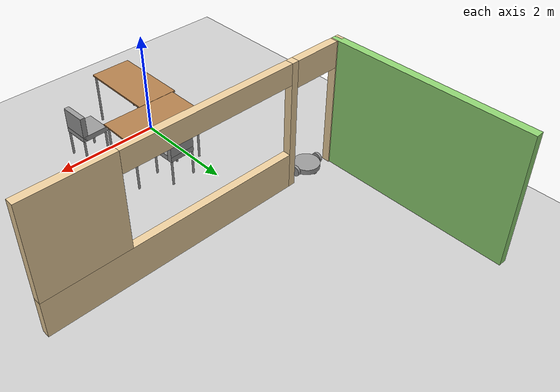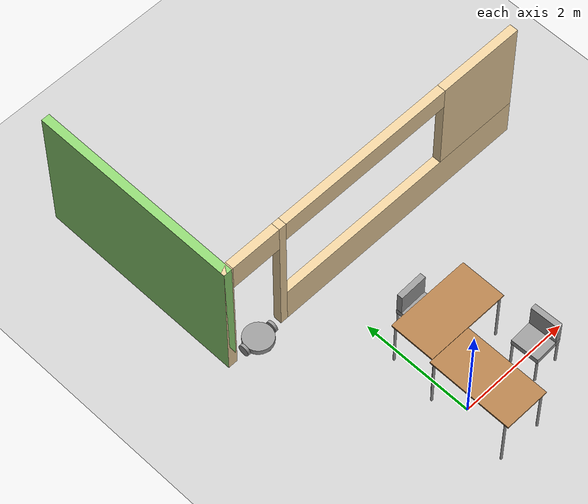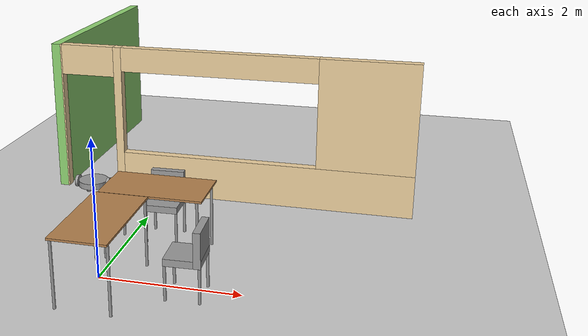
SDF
<sdf version="1.6">
 <world name="default">
  <model name="ground_plane">
   <static>1</static>
   <link name="link">
    <collision name="collision">
     <geometry><plane><normal>0 0 1</normal><size>100 100</size></plane></geometry>
     <surface>
      <contact><collide_bitmask>65535</collide_bitmask></contact>
      <friction><ode><mu>100</mu><mu2>50</mu2></ode></friction>
     </surface>
    </collision>
    <visual name="visual">
     <cast_shadows>0</cast_shadows>
     <geometry><plane><normal>0 0 1</normal><size>100 100</size></plane></geometry>
     <material>
      <script><uri>file://media/materials/scripts/gazebo.material</uri><name>Gazebo/Grey</name></script>
     </material>
    </visual>
   </link>
  </model>
  <model name="dunder_mifflin_scranton_full">
   <pose>4.5312 0.479645 0 0 -0 0</pose>
   <link name="Wall_21">
    <collision name="Wall_21_Collision">
     <geometry><box><size>3.75 0.15 2.5</size></box></geometry>
     <pose>0 0 1.25 0 -0 0</pose>
    </collision>
    <visual name="Wall_21_Visual">
     <pose>0 0 1.25 0 -0 0</pose>
     <geometry><box><size>3.75 0.15 2.5</size></box></geometry>
     <material>
      <script><uri>file://media/materials/scripts/gazebo.material</uri><name>Gazebo/Grey</name></script>
      <ambient>0.556863 0.823529 0.443137 1</ambient>
     </material>
     <meta><layer>0</layer></meta>
    </visual>
    <pose>-6.38225 4.33925 0 0 -0 1.5708</pose>
   </link>
   <link name="Wall_23">
    <pose>-3.45724 2.53925 0 0 -0 0</pose>
    <visual name="Wall_23_Visual_0">
     <pose>-2.91414 0 1.25 0 -0 0</pose>
     <geometry><box><size>0.171718 0.15 2.5</size></box></geometry>
     <material>
      <script><uri>file://media/materials/scripts/gazebo.material</uri><name>Gazebo/Grey</name></script>
      <ambient>0.921569 0.807843 0.615686 1</ambient>
     </material>
     <meta><layer>0</layer></meta>
    </visual>
    <collision name="Wall_23_Collision_0">
     <geometry><box><size>0.171718 0.15 2.5</size></box></geometry>
     <pose>-2.91414 0 1.25 0 -0 0</pose>
    </collision>
    <visual name="Wall_23_Visual_1">
     <pose>-1.86179 0 1.25 0 -0 0</pose>
     <geometry><box><size>0.132993 0.15 2.5</size></box></geometry>
     <material>
      <script><uri>file://media/materials/scripts/gazebo.material</uri><name>Gazebo/Grey</name></script>
      <ambient>0.921569 0.807843 0.615686 1</ambient>
     </material>
     <meta><layer>0</layer></meta>
    </visual>
    <collision name="Wall_23_Collision_1">
     <geometry><box><size>0.132993 0.15 2.5</size></box></geometry>
     <pose>-1.86179 0 1.25 0 -0 0</pose>
    </collision>
    <visual name="Wall_23_Visual_2">
     <pose>0.602356 0 0.35 0 -0 0</pose>
     <geometry><box><size>4.79529 0.15 0.7</size></box></geometry>
     <material>
      <script><uri>file://media/materials/scripts/gazebo.material</uri><name>Gazebo/Grey</name></script>
      <ambient>0.921569 0.807843 0.615686 1</ambient>
     </material>
     <meta><layer>0</layer></meta>
    </visual>
    <collision name="Wall_23_Collision_2">
     <geometry><box><size>4.79529 0.15 0.7</size></box></geometry>
     <pose>0.602356 0 0.35 0 -0 0</pose>
    </collision>
    <visual name="Wall_23_Visual_3">
     <pose>2.22271 0 1.6 0 -0 0</pose>
     <geometry><box><size>1.55459 0.15 1.8</size></box></geometry>
     <material>
      <script><uri>file://media/materials/scripts/gazebo.material</uri><name>Gazebo/Grey</name></script>
      <ambient>0.921569 0.807843 0.615686 1</ambient>
     </material>
     <meta><layer>0</layer></meta>
    </visual>
    <collision name="Wall_23_Collision_3">
     <geometry><box><size>1.55459 0.15 1.8</size></box></geometry>
     <pose>2.22271 0 1.6 0 -0 0</pose>
    </collision>
    <visual name="Wall_23_Visual_4">
     <pose>-2.37828 0 2.25 0 -0 0</pose>
     <geometry><box><size>0.9 0.15 0.5</size></box></geometry>
     <material>
      <script><uri>file://media/materials/scripts/gazebo.material</uri><name>Gazebo/Grey</name></script>
      <ambient>0.921569 0.807843 0.615686 1</ambient>
     </material>
     <meta><layer>0</layer></meta>
    </visual>
    <collision name="Wall_23_Collision_4">
     <geometry><box><size>0.9 0.15 0.5</size></box></geometry>
     <pose>-2.37828 0 2.25 0 -0 0</pose>
    </collision>
    <visual name="Wall_23_Visual_5">
     <pose>-0.174937 0 2.3 0 -0 0</pose>
     <geometry><box><size>3.2407 0.15 0.4</size></box></geometry>
     <material>
      <script><uri>file://media/materials/scripts/gazebo.material</uri><name>Gazebo/Grey</name></script>
      <ambient>0.921569 0.807843 0.615686 1</ambient>
     </material>
     <meta><layer>0</layer></meta>
    </visual>
    <collision name="Wall_23_Collision_5">
     <geometry><box><size>3.2407 0.15 0.4</size></box></geometry>
     <pose>-0.174937 0 2.3 0 -0 0</pose>
    </collision>
   </link>
   <static>1</static>
  </model>
  <model name="table_6">
   <static>1</static>
   <link name="link">
    <collision name="surface">
     <pose>0 0 1 0 -0 0</pose>
     <geometry><box><size>1.5 0.8 0.03</size></box></geometry>
     <surface><friction><ode><mu>0.6</mu><mu2>0.6</mu2></ode></friction></surface>
    </collision>
    <visual name="visual1">
     <pose>0 0 1 0 -0 0</pose>
     <geometry><box><size>1.5 0.8 0.03</size></box></geometry>
     <material>
      <script><uri>file://media/materials/scripts/gazebo.material</uri><name>Gazebo/Wood</name></script>
     </material>
    </visual>
    <collision name="front_left_leg">
     <pose>0.68 0.38 0.5 0 -0 0</pose>
     <geometry><cylinder><radius>0.02</radius><length>1</length></cylinder></geometry>
    </collision>
    <visual name="front_left_leg">
     <pose>0.68 0.38 0.5 0 -0 0</pose>
     <geometry><cylinder><radius>0.02</radius><length>1</length></cylinder></geometry>
     <material>
      <script><uri>file://media/materials/scripts/gazebo.material</uri><name>Gazebo/Grey</name></script>
     </material>
    </visual>
    <collision name="front_right_leg">
     <pose>0.68 -0.38 0.5 0 -0 0</pose>
     <geometry><cylinder><radius>0.02</radius><length>1</length></cylinder></geometry>
    </collision>
    <visual name="front_right_leg">
     <pose>0.68 -0.38 0.5 0 -0 0</pose>
     <geometry><cylinder><radius>0.02</radius><length>1</length></cylinder></geometry>
     <material>
      <script><uri>file://media/materials/scripts/gazebo.material</uri><name>Gazebo/Grey</name></script>
     </material>
    </visual>
    <collision name="back_right_leg">
     <pose>-0.68 -0.38 0.5 0 -0 0</pose>
     <geometry><cylinder><radius>0.02</radius><length>1</length></cylinder></geometry>
    </collision>
    <visual name="back_right_leg">
     <pose>-0.68 -0.38 0.5 0 -0 0</pose>
     <geometry><cylinder><radius>0.02</radius><length>1</length></cylinder></geometry>
     <material>
      <script><uri>file://media/materials/scripts/gazebo.material</uri><name>Gazebo/Grey</name></script>
     </material>
    </visual>
    <collision name="back_left_leg">
     <pose>-0.68 0.38 0.5 0 -0 0</pose>
     <geometry><cylinder><radius>0.02</radius><length>1</length></cylinder></geometry>
    </collision>
    <visual name="back_left_leg">
     <pose>-0.68 0.38 0.5 0 -0 0</pose>
     <geometry><cylinder><radius>0.02</radius><length>1</length></cylinder></geometry>
     <material>
      <script><uri>file://media/materials/scripts/gazebo.material</uri><name>Gazebo/Grey</name></script>
     </material>
    </visual>
   </link>
   <pose>0.550821 0.956155 0 0 -0 0</pose>
  </model>
  <model name="table_8">
   <static>1</static>
   <link name="link">
    <collision name="surface">
     <pose>0 0 1 0 -0 0</pose>
     <geometry><box><size>1.5 0.8 0.03</size></box></geometry>
     <surface><friction><ode><mu>0.6</mu><mu2>0.6</mu2></ode></friction></surface>
    </collision>
    <visual name="visual1">
     <pose>0 0 1 0 -0 0</pose>
     <geometry><box><size>1.5 0.8 0.03</size></box></geometry>
     <material>
      <script><uri>file://media/materials/scripts/gazebo.material</uri><name>Gazebo/Wood</name></script>
     </material>
    </visual>
    <collision name="front_left_leg">
     <pose>0.68 0.38 0.5 0 -0 0</pose>
     <geometry><cylinder><radius>0.02</radius><length>1</length></cylinder></geometry>
    </collision>
    <visual name="front_left_leg">
     <pose>0.68 0.38 0.5 0 -0 0</pose>
     <geometry><cylinder><radius>0.02</radius><length>1</length></cylinder></geometry>
     <material>
      <script><uri>file://media/materials/scripts/gazebo.material</uri><name>Gazebo/Grey</name></script>
     </material>
    </visual>
    <collision name="front_right_leg">
     <pose>0.68 -0.38 0.5 0 -0 0</pose>
     <geometry><cylinder><radius>0.02</radius><length>1</length></cylinder></geometry>
    </collision>
    <visual name="front_right_leg">
     <pose>0.68 -0.38 0.5 0 -0 0</pose>
     <geometry><cylinder><radius>0.02</radius><length>1</length></cylinder></geometry>
     <material>
      <script><uri>file://media/materials/scripts/gazebo.material</uri><name>Gazebo/Grey</name></script>
     </material>
    </visual>
    <collision name="back_right_leg">
     <pose>-0.68 -0.38 0.5 0 -0 0</pose>
     <geometry><cylinder><radius>0.02</radius><length>1</length></cylinder></geometry>
    </collision>
    <visual name="back_right_leg">
     <pose>-0.68 -0.38 0.5 0 -0 0</pose>
     <geometry><cylinder><radius>0.02</radius><length>1</length></cylinder></geometry>
     <material>
      <script><uri>file://media/materials/scripts/gazebo.material</uri><name>Gazebo/Grey</name></script>
     </material>
    </visual>
    <collision name="back_left_leg">
     <pose>-0.68 0.38 0.5 0 -0 0</pose>
     <geometry><cylinder><radius>0.02</radius><length>1</length></cylinder></geometry>
    </collision>
    <visual name="back_left_leg">
     <pose>-0.68 0.38 0.5 0 -0 0</pose>
     <geometry><cylinder><radius>0.02</radius><length>1</length></cylinder></geometry>
     <material>
      <script><uri>file://media/materials/scripts/gazebo.material</uri><name>Gazebo/Grey</name></script>
     </material>
    </visual>
   </link>
   <pose>0.143422 -0.19819 0 0 0 -1.5708</pose>
  </model>
  <model name="chair_8">
   <link name="link_0">
    <inertial>
     <mass>1</mass>
     <inertia><ixx>0.145833</ixx><ixy>0</ixy><ixz>0</ixz><iyy>0.145833</iyy><iyz>0</iyz><izz>0.125</izz></inertia>
    </inertial>
    <pose>-0.23 -0.19667 -0.280001 0 -0 0</pose>
    <visual name="visual">
     <geometry><cylinder><radius>0.02</radius><length>0.5</length></cylinder></geometry>
     <material>
      <lighting>1</lighting>
      <script><uri>file://media/materials/scripts/gazebo.material</uri><name>Gazebo/Grey</name></script>
      <shader type="vertex"><normal_map>__default__</normal_map></shader>
      <ambient>0.3 0.3 0.3 1</ambient>
      <diffuse>0.7 0.7 0.7 1</diffuse>
      <specular>0.01 0.01 0.01 1</specular>
      <emissive>0 0 0 1</emissive>
     </material>
    </visual>
    <collision name="collision">
     <geometry><cylinder><radius>0.02</radius><length>0.5</length></cylinder></geometry>
     <surface>
      <friction>
       <ode><mu>1</mu><mu2>1</mu2><fdir1>0 0 0</fdir1><slip1>0</slip1><slip2>0</slip2></ode>
       <torsional>
        <coefficient>1</coefficient>
        <patch_radius>0</patch_radius>
        <surface_radius>0</surface_radius>
        <use_patch_radius>1</use_patch_radius>
        <ode><slip>0</slip></ode>
       </torsional>
      </friction>
      <bounce><restitution_coefficient>0</restitution_coefficient><threshold>1e+06</threshold></bounce>
      <contact>
       <collide_without_contact>0</collide_without_contact>
       <collide_without_contact_bitmask>1</collide_without_contact_bitmask>
       <collide_bitmask>1</collide_bitmask>
       <ode>
        <soft_cfm>0</soft_cfm>
        <soft_erp>0.2</soft_erp>
        <kp>1e+13</kp>
        <kd>1</kd>
        <max_vel>0.01</max_vel>
        <min_depth>0</min_depth>
       </ode>
       <bullet>
        <split_impulse>1</split_impulse>
        <split_impulse_penetration_threshold>-0.01</split_impulse_penetration_threshold>
        <soft_cfm>0</soft_cfm>
        <soft_erp>0.2</soft_erp>
        <kp>1e+13</kp>
        <kd>1</kd>
       </bullet>
      </contact>
     </surface>
    </collision>
   </link>
   <link name="link_0_clone">
    <inertial>
     <mass>1</mass>
     <inertia><ixx>0.145833</ixx><ixy>0</ixy><ixz>0</ixz><iyy>0.145833</iyy><iyz>0</iyz><izz>0.125</izz></inertia>
    </inertial>
    <pose>0.23 -0.19667 -0.280001 0 -0 0</pose>
    <visual name="visual">
     <geometry><cylinder><radius>0.02</radius><length>0.5</length></cylinder></geometry>
     <material>
      <lighting>1</lighting>
      <script><uri>file://media/materials/scripts/gazebo.material</uri><name>Gazebo/Grey</name></script>
      <shader type="vertex"><normal_map>__default__</normal_map></shader>
      <ambient>0.3 0.3 0.3 1</ambient>
      <diffuse>0.7 0.7 0.7 1</diffuse>
      <specular>0.01 0.01 0.01 1</specular>
      <emissive>0 0 0 1</emissive>
     </material>
    </visual>
    <collision name="collision">
     <geometry><cylinder><radius>0.02</radius><length>0.5</length></cylinder></geometry>
     <surface>
      <friction>
       <ode><mu>1</mu><mu2>1</mu2><fdir1>0 0 0</fdir1><slip1>0</slip1><slip2>0</slip2></ode>
       <torsional>
        <coefficient>1</coefficient>
        <patch_radius>0</patch_radius>
        <surface_radius>0</surface_radius>
        <use_patch_radius>1</use_patch_radius>
        <ode><slip>0</slip></ode>
       </torsional>
      </friction>
      <bounce><restitution_coefficient>0</restitution_coefficient><threshold>1e+06</threshold></bounce>
      <contact>
       <collide_without_contact>0</collide_without_contact>
       <collide_without_contact_bitmask>1</collide_without_contact_bitmask>
       <collide_bitmask>1</collide_bitmask>
       <ode>
        <soft_cfm>0</soft_cfm>
        <soft_erp>0.2</soft_erp>
        <kp>1e+13</kp>
        <kd>1</kd>
        <max_vel>0.01</max_vel>
        <min_depth>0</min_depth>
       </ode>
       <bullet>
        <split_impulse>1</split_impulse>
        <split_impulse_penetration_threshold>-0.01</split_impulse_penetration_threshold>
        <soft_cfm>0</soft_cfm>
        <soft_erp>0.2</soft_erp>
        <kp>1e+13</kp>
        <kd>1</kd>
       </bullet>
      </contact>
     </surface>
    </collision>
   </link>
   <link name="link_0_clone_0">
    <inertial>
     <mass>1</mass>
     <inertia><ixx>0.145833</ixx><ixy>0</ixy><ixz>0</ixz><iyy>0.145833</iyy><iyz>0</iyz><izz>0.125</izz></inertia>
    </inertial>
    <pose>0.23 0.26333 -0.280001 0 -0 0</pose>
    <visual name="visual">
     <geometry><cylinder><radius>0.02</radius><length>0.5</length></cylinder></geometry>
     <material>
      <lighting>1</lighting>
      <script><uri>file://media/materials/scripts/gazebo.material</uri><name>Gazebo/Grey</name></script>
      <shader type="vertex"><normal_map>__default__</normal_map></shader>
      <ambient>0.3 0.3 0.3 1</ambient>
      <diffuse>0.7 0.7 0.7 1</diffuse>
      <specular>0.01 0.01 0.01 1</specular>
      <emissive>0 0 0 1</emissive>
     </material>
    </visual>
    <collision name="collision">
     <geometry><cylinder><radius>0.02</radius><length>0.5</length></cylinder></geometry>
     <surface>
      <friction>
       <ode><mu>1</mu><mu2>1</mu2><fdir1>0 0 0</fdir1><slip1>0</slip1><slip2>0</slip2></ode>
       <torsional>
        <coefficient>1</coefficient>
        <patch_radius>0</patch_radius>
        <surface_radius>0</surface_radius>
        <use_patch_radius>1</use_patch_radius>
        <ode><slip>0</slip></ode>
       </torsional>
      </friction>
      <bounce><restitution_coefficient>0</restitution_coefficient><threshold>1e+06</threshold></bounce>
      <contact>
       <collide_without_contact>0</collide_without_contact>
       <collide_without_contact_bitmask>1</collide_without_contact_bitmask>
       <collide_bitmask>1</collide_bitmask>
       <ode>
        <soft_cfm>0</soft_cfm>
        <soft_erp>0.2</soft_erp>
        <kp>1e+13</kp>
        <kd>1</kd>
        <max_vel>0.01</max_vel>
        <min_depth>0</min_depth>
       </ode>
       <bullet>
        <split_impulse>1</split_impulse>
        <split_impulse_penetration_threshold>-0.01</split_impulse_penetration_threshold>
        <soft_cfm>0</soft_cfm>
        <soft_erp>0.2</soft_erp>
        <kp>1e+13</kp>
        <kd>1</kd>
       </bullet>
      </contact>
     </surface>
    </collision>
   </link>
   <link name="link_0_clone_1">
    <inertial>
     <mass>1</mass>
     <inertia><ixx>0.145833</ixx><ixy>0</ixy><ixz>0</ixz><iyy>0.145833</iyy><iyz>0</iyz><izz>0.125</izz></inertia>
    </inertial>
    <pose>-0.23 0.26333 -0.280001 0 -0 0</pose>
    <visual name="visual">
     <geometry><cylinder><radius>0.02</radius><length>0.5</length></cylinder></geometry>
     <material>
      <lighting>1</lighting>
      <script><uri>file://media/materials/scripts/gazebo.material</uri><name>Gazebo/Grey</name></script>
      <shader type="vertex"><normal_map>__default__</normal_map></shader>
      <ambient>0.3 0.3 0.3 1</ambient>
      <diffuse>0.7 0.7 0.7 1</diffuse>
      <specular>0.01 0.01 0.01 1</specular>
      <emissive>0 0 0 1</emissive>
     </material>
    </visual>
    <collision name="collision">
     <geometry><cylinder><radius>0.02</radius><length>0.5</length></cylinder></geometry>
     <surface>
      <friction>
       <ode><mu>1</mu><mu2>1</mu2><fdir1>0 0 0</fdir1><slip1>0</slip1><slip2>0</slip2></ode>
       <torsional>
        <coefficient>1</coefficient>
        <patch_radius>0</patch_radius>
        <surface_radius>0</surface_radius>
        <use_patch_radius>1</use_patch_radius>
        <ode><slip>0</slip></ode>
       </torsional>
      </friction>
      <bounce><restitution_coefficient>0</restitution_coefficient><threshold>1e+06</threshold></bounce>
      <contact>
       <collide_without_contact>0</collide_without_contact>
       <collide_without_contact_bitmask>1</collide_without_contact_bitmask>
       <collide_bitmask>1</collide_bitmask>
       <ode>
        <soft_cfm>0</soft_cfm>
        <soft_erp>0.2</soft_erp>
        <kp>1e+13</kp>
        <kd>1</kd>
        <max_vel>0.01</max_vel>
        <min_depth>0</min_depth>
       </ode>
       <bullet>
        <split_impulse>1</split_impulse>
        <split_impulse_penetration_threshold>-0.01</split_impulse_penetration_threshold>
        <soft_cfm>0</soft_cfm>
        <soft_erp>0.2</soft_erp>
        <kp>1e+13</kp>
        <kd>1</kd>
       </bullet>
      </contact>
     </surface>
    </collision>
   </link>
   <link name="link_2">
    <inertial>
     <mass>1</mass>
     <inertia>
      <ixx>0.166667</ixx>
      <ixy>0</ixy>
      <ixz>0</ixz>
      <iyy>0.166667</iyy>
      <iyz>0</iyz>
      <izz>0.166667</izz>
     </inertia>
    </inertial>
    <pose>0 0.03333 0.019999 0 -0 0</pose>
    <visual name="visual">
     <geometry><box><size>0.5 0.5 0.1</size></box></geometry>
     <material>
      <lighting>1</lighting>
      <script><uri>file://media/materials/scripts/gazebo.material</uri><name>Gazebo/Grey</name></script>
      <shader type="vertex"><normal_map>__default__</normal_map></shader>
      <ambient>0.3 0.3 0.3 1</ambient>
      <diffuse>0.7 0.7 0.7 1</diffuse>
      <specular>0.01 0.01 0.01 1</specular>
      <emissive>0 0 0 1</emissive>
     </material>
    </visual>
    <collision name="collision">
     <geometry><box><size>0.5 0.5 0.1</size></box></geometry>
     <surface>
      <friction>
       <ode><mu>1</mu><mu2>1</mu2><fdir1>0 0 0</fdir1><slip1>0</slip1><slip2>0</slip2></ode>
       <torsional>
        <coefficient>1</coefficient>
        <patch_radius>0</patch_radius>
        <surface_radius>0</surface_radius>
        <use_patch_radius>1</use_patch_radius>
        <ode><slip>0</slip></ode>
       </torsional>
      </friction>
      <bounce><restitution_coefficient>0</restitution_coefficient><threshold>1e+06</threshold></bounce>
      <contact>
       <collide_without_contact>0</collide_without_contact>
       <collide_without_contact_bitmask>1</collide_without_contact_bitmask>
       <collide_bitmask>1</collide_bitmask>
       <ode>
        <soft_cfm>0</soft_cfm>
        <soft_erp>0.2</soft_erp>
        <kp>1e+13</kp>
        <kd>1</kd>
        <max_vel>0.01</max_vel>
        <min_depth>0</min_depth>
       </ode>
       <bullet>
        <split_impulse>1</split_impulse>
        <split_impulse_penetration_threshold>-0.01</split_impulse_penetration_threshold>
        <soft_cfm>0</soft_cfm>
        <soft_erp>0.2</soft_erp>
        <kp>1e+13</kp>
        <kd>1</kd>
       </bullet>
      </contact>
     </surface>
    </collision>
   </link>
   <link name="link_2_clone">
    <inertial>
     <mass>1</mass>
     <inertia>
      <ixx>0.166667</ixx>
      <ixy>0</ixy>
      <ixz>0</ixz>
      <iyy>0.166667</iyy>
      <iyz>0</iyz>
      <izz>0.166667</izz>
     </inertia>
    </inertial>
    <pose>0 -0.166646 0.220004 1.5707 -0 0</pose>
    <visual name="visual">
     <geometry><box><size>0.5 0.5 0.1</size></box></geometry>
     <material>
      <lighting>1</lighting>
      <script><uri>file://media/materials/scripts/gazebo.material</uri><name>Gazebo/Grey</name></script>
      <shader type="vertex"><normal_map>__default__</normal_map></shader>
      <ambient>0.3 0.3 0.3 1</ambient>
      <diffuse>0.7 0.7 0.7 1</diffuse>
      <specular>0.01 0.01 0.01 1</specular>
      <emissive>0 0 0 1</emissive>
     </material>
    </visual>
    <collision name="collision">
     <geometry><box><size>0.5 0.5 0.1</size></box></geometry>
     <surface>
      <friction>
       <ode><mu>1</mu><mu2>1</mu2><fdir1>0 0 0</fdir1><slip1>0</slip1><slip2>0</slip2></ode>
       <torsional>
        <coefficient>1</coefficient>
        <patch_radius>0</patch_radius>
        <surface_radius>0</surface_radius>
        <use_patch_radius>1</use_patch_radius>
        <ode><slip>0</slip></ode>
       </torsional>
      </friction>
      <bounce><restitution_coefficient>0</restitution_coefficient><threshold>1e+06</threshold></bounce>
      <contact>
       <collide_without_contact>0</collide_without_contact>
       <collide_without_contact_bitmask>1</collide_without_contact_bitmask>
       <collide_bitmask>1</collide_bitmask>
       <ode>
        <soft_cfm>0</soft_cfm>
        <soft_erp>0.2</soft_erp>
        <kp>1e+13</kp>
        <kd>1</kd>
        <max_vel>0.01</max_vel>
        <min_depth>0</min_depth>
       </ode>
       <bullet>
        <split_impulse>1</split_impulse>
        <split_impulse_penetration_threshold>-0.01</split_impulse_penetration_threshold>
        <soft_cfm>0</soft_cfm>
        <soft_erp>0.2</soft_erp>
        <kp>1e+13</kp>
        <kd>1</kd>
       </bullet>
      </contact>
     </surface>
    </collision>
   </link>
   <joint name="link_0_clone_JOINT_2" type="fixed">
    <parent>link_2</parent>
    <child>link_0_clone</child>
    <physics>
     <ode><limit><cfm>0</cfm><erp>0.2</erp></limit><suspension><cfm>0</cfm><erp>0.2</erp></suspension></ode>
    </physics>
   </joint>
   <joint name="link_2_JOINT_1" type="fixed">
    <parent>link_2</parent>
    <child>link_0</child>
    <physics>
     <ode><limit><cfm>0</cfm><erp>0.2</erp></limit><suspension><cfm>0</cfm><erp>0.2</erp></suspension></ode>
    </physics>
   </joint>
   <joint name="link_2_JOINT_3" type="fixed">
    <parent>link_2</parent>
    <child>link_0_clone_0</child>
    <physics>
     <ode><limit><cfm>0</cfm><erp>0.2</erp></limit><suspension><cfm>0</cfm><erp>0.2</erp></suspension></ode>
    </physics>
   </joint>
   <joint name="link_2_JOINT_4" type="fixed">
    <parent>link_2</parent>
    <child>link_0_clone_1</child>
    <physics>
     <ode><limit><cfm>0</cfm><erp>0.2</erp></limit><suspension><cfm>0</cfm><erp>0.2</erp></suspension></ode>
    </physics>
   </joint>
   <joint name="link_2_JOINT_5" type="fixed">
    <parent>link_2</parent>
    <child>link_2_clone</child>
    <physics>
     <ode><limit><cfm>0</cfm><erp>0.2</erp></limit><suspension><cfm>0</cfm><erp>0.2</erp></suspension></ode>
    </physics>
   </joint>
   <static>0</static>
   <pose>0.492947 1.45092 0.529995 0 0 -3.11462</pose>
  </model>
  <model name="chair_9">
   <link name="link_0">
    <inertial>
     <mass>1</mass>
     <inertia><ixx>0.145833</ixx><ixy>0</ixy><ixz>0</ixz><iyy>0.145833</iyy><iyz>0</iyz><izz>0.125</izz></inertia>
    </inertial>
    <pose>-0.23 -0.19667 -0.280001 0 -0 0</pose>
    <visual name="visual">
     <geometry><cylinder><radius>0.02</radius><length>0.5</length></cylinder></geometry>
     <material>
      <lighting>1</lighting>
      <script><uri>file://media/materials/scripts/gazebo.material</uri><name>Gazebo/Grey</name></script>
      <shader type="vertex"><normal_map>__default__</normal_map></shader>
      <ambient>0.3 0.3 0.3 1</ambient>
      <diffuse>0.7 0.7 0.7 1</diffuse>
      <specular>0.01 0.01 0.01 1</specular>
      <emissive>0 0 0 1</emissive>
     </material>
    </visual>
    <collision name="collision">
     <geometry><cylinder><radius>0.02</radius><length>0.5</length></cylinder></geometry>
     <surface>
      <friction>
       <ode><mu>1</mu><mu2>1</mu2><fdir1>0 0 0</fdir1><slip1>0</slip1><slip2>0</slip2></ode>
       <torsional>
        <coefficient>1</coefficient>
        <patch_radius>0</patch_radius>
        <surface_radius>0</surface_radius>
        <use_patch_radius>1</use_patch_radius>
        <ode><slip>0</slip></ode>
       </torsional>
      </friction>
      <bounce><restitution_coefficient>0</restitution_coefficient><threshold>1e+06</threshold></bounce>
      <contact>
       <collide_without_contact>0</collide_without_contact>
       <collide_without_contact_bitmask>1</collide_without_contact_bitmask>
       <collide_bitmask>1</collide_bitmask>
       <ode>
        <soft_cfm>0</soft_cfm>
        <soft_erp>0.2</soft_erp>
        <kp>1e+13</kp>
        <kd>1</kd>
        <max_vel>0.01</max_vel>
        <min_depth>0</min_depth>
       </ode>
       <bullet>
        <split_impulse>1</split_impulse>
        <split_impulse_penetration_threshold>-0.01</split_impulse_penetration_threshold>
        <soft_cfm>0</soft_cfm>
        <soft_erp>0.2</soft_erp>
        <kp>1e+13</kp>
        <kd>1</kd>
       </bullet>
      </contact>
     </surface>
    </collision>
   </link>
   <link name="link_0_clone">
    <inertial>
     <mass>1</mass>
     <inertia><ixx>0.145833</ixx><ixy>0</ixy><ixz>0</ixz><iyy>0.145833</iyy><iyz>0</iyz><izz>0.125</izz></inertia>
    </inertial>
    <pose>0.23 -0.19667 -0.280001 0 -0 0</pose>
    <visual name="visual">
     <geometry><cylinder><radius>0.02</radius><length>0.5</length></cylinder></geometry>
     <material>
      <lighting>1</lighting>
      <script><uri>file://media/materials/scripts/gazebo.material</uri><name>Gazebo/Grey</name></script>
      <shader type="vertex"><normal_map>__default__</normal_map></shader>
      <ambient>0.3 0.3 0.3 1</ambient>
      <diffuse>0.7 0.7 0.7 1</diffuse>
      <specular>0.01 0.01 0.01 1</specular>
      <emissive>0 0 0 1</emissive>
     </material>
    </visual>
    <collision name="collision">
     <geometry><cylinder><radius>0.02</radius><length>0.5</length></cylinder></geometry>
     <surface>
      <friction>
       <ode><mu>1</mu><mu2>1</mu2><fdir1>0 0 0</fdir1><slip1>0</slip1><slip2>0</slip2></ode>
       <torsional>
        <coefficient>1</coefficient>
        <patch_radius>0</patch_radius>
        <surface_radius>0</surface_radius>
        <use_patch_radius>1</use_patch_radius>
        <ode><slip>0</slip></ode>
       </torsional>
      </friction>
      <bounce><restitution_coefficient>0</restitution_coefficient><threshold>1e+06</threshold></bounce>
      <contact>
       <collide_without_contact>0</collide_without_contact>
       <collide_without_contact_bitmask>1</collide_without_contact_bitmask>
       <collide_bitmask>1</collide_bitmask>
       <ode>
        <soft_cfm>0</soft_cfm>
        <soft_erp>0.2</soft_erp>
        <kp>1e+13</kp>
        <kd>1</kd>
        <max_vel>0.01</max_vel>
        <min_depth>0</min_depth>
       </ode>
       <bullet>
        <split_impulse>1</split_impulse>
        <split_impulse_penetration_threshold>-0.01</split_impulse_penetration_threshold>
        <soft_cfm>0</soft_cfm>
        <soft_erp>0.2</soft_erp>
        <kp>1e+13</kp>
        <kd>1</kd>
       </bullet>
      </contact>
     </surface>
    </collision>
   </link>
   <link name="link_0_clone_0">
    <inertial>
     <mass>1</mass>
     <inertia><ixx>0.145833</ixx><ixy>0</ixy><ixz>0</ixz><iyy>0.145833</iyy><iyz>0</iyz><izz>0.125</izz></inertia>
    </inertial>
    <pose>0.23 0.26333 -0.280001 0 -0 0</pose>
    <visual name="visual">
     <geometry><cylinder><radius>0.02</radius><length>0.5</length></cylinder></geometry>
     <material>
      <lighting>1</lighting>
      <script><uri>file://media/materials/scripts/gazebo.material</uri><name>Gazebo/Grey</name></script>
      <shader type="vertex"><normal_map>__default__</normal_map></shader>
      <ambient>0.3 0.3 0.3 1</ambient>
      <diffuse>0.7 0.7 0.7 1</diffuse>
      <specular>0.01 0.01 0.01 1</specular>
      <emissive>0 0 0 1</emissive>
     </material>
    </visual>
    <collision name="collision">
     <geometry><cylinder><radius>0.02</radius><length>0.5</length></cylinder></geometry>
     <surface>
      <friction>
       <ode><mu>1</mu><mu2>1</mu2><fdir1>0 0 0</fdir1><slip1>0</slip1><slip2>0</slip2></ode>
       <torsional>
        <coefficient>1</coefficient>
        <patch_radius>0</patch_radius>
        <surface_radius>0</surface_radius>
        <use_patch_radius>1</use_patch_radius>
        <ode><slip>0</slip></ode>
       </torsional>
      </friction>
      <bounce><restitution_coefficient>0</restitution_coefficient><threshold>1e+06</threshold></bounce>
      <contact>
       <collide_without_contact>0</collide_without_contact>
       <collide_without_contact_bitmask>1</collide_without_contact_bitmask>
       <collide_bitmask>1</collide_bitmask>
       <ode>
        <soft_cfm>0</soft_cfm>
        <soft_erp>0.2</soft_erp>
        <kp>1e+13</kp>
        <kd>1</kd>
        <max_vel>0.01</max_vel>
        <min_depth>0</min_depth>
       </ode>
       <bullet>
        <split_impulse>1</split_impulse>
        <split_impulse_penetration_threshold>-0.01</split_impulse_penetration_threshold>
        <soft_cfm>0</soft_cfm>
        <soft_erp>0.2</soft_erp>
        <kp>1e+13</kp>
        <kd>1</kd>
       </bullet>
      </contact>
     </surface>
    </collision>
   </link>
   <link name="link_0_clone_1">
    <inertial>
     <mass>1</mass>
     <inertia><ixx>0.145833</ixx><ixy>0</ixy><ixz>0</ixz><iyy>0.145833</iyy><iyz>0</iyz><izz>0.125</izz></inertia>
    </inertial>
    <pose>-0.23 0.26333 -0.280001 0 -0 0</pose>
    <visual name="visual">
     <geometry><cylinder><radius>0.02</radius><length>0.5</length></cylinder></geometry>
     <material>
      <lighting>1</lighting>
      <script><uri>file://media/materials/scripts/gazebo.material</uri><name>Gazebo/Grey</name></script>
      <shader type="vertex"><normal_map>__default__</normal_map></shader>
      <ambient>0.3 0.3 0.3 1</ambient>
      <diffuse>0.7 0.7 0.7 1</diffuse>
      <specular>0.01 0.01 0.01 1</specular>
      <emissive>0 0 0 1</emissive>
     </material>
    </visual>
    <collision name="collision">
     <geometry><cylinder><radius>0.02</radius><length>0.5</length></cylinder></geometry>
     <surface>
      <friction>
       <ode><mu>1</mu><mu2>1</mu2><fdir1>0 0 0</fdir1><slip1>0</slip1><slip2>0</slip2></ode>
       <torsional>
        <coefficient>1</coefficient>
        <patch_radius>0</patch_radius>
        <surface_radius>0</surface_radius>
        <use_patch_radius>1</use_patch_radius>
        <ode><slip>0</slip></ode>
       </torsional>
      </friction>
      <bounce><restitution_coefficient>0</restitution_coefficient><threshold>1e+06</threshold></bounce>
      <contact>
       <collide_without_contact>0</collide_without_contact>
       <collide_without_contact_bitmask>1</collide_without_contact_bitmask>
       <collide_bitmask>1</collide_bitmask>
       <ode>
        <soft_cfm>0</soft_cfm>
        <soft_erp>0.2</soft_erp>
        <kp>1e+13</kp>
        <kd>1</kd>
        <max_vel>0.01</max_vel>
        <min_depth>0</min_depth>
       </ode>
       <bullet>
        <split_impulse>1</split_impulse>
        <split_impulse_penetration_threshold>-0.01</split_impulse_penetration_threshold>
        <soft_cfm>0</soft_cfm>
        <soft_erp>0.2</soft_erp>
        <kp>1e+13</kp>
        <kd>1</kd>
       </bullet>
      </contact>
     </surface>
    </collision>
   </link>
   <link name="link_2">
    <inertial>
     <mass>1</mass>
     <inertia>
      <ixx>0.166667</ixx>
      <ixy>0</ixy>
      <ixz>0</ixz>
      <iyy>0.166667</iyy>
      <iyz>0</iyz>
      <izz>0.166667</izz>
     </inertia>
    </inertial>
    <pose>0 0.03333 0.019999 0 -0 0</pose>
    <visual name="visual">
     <geometry><box><size>0.5 0.5 0.1</size></box></geometry>
     <material>
      <lighting>1</lighting>
      <script><uri>file://media/materials/scripts/gazebo.material</uri><name>Gazebo/Grey</name></script>
      <shader type="vertex"><normal_map>__default__</normal_map></shader>
      <ambient>0.3 0.3 0.3 1</ambient>
      <diffuse>0.7 0.7 0.7 1</diffuse>
      <specular>0.01 0.01 0.01 1</specular>
      <emissive>0 0 0 1</emissive>
     </material>
    </visual>
    <collision name="collision">
     <geometry><box><size>0.5 0.5 0.1</size></box></geometry>
     <surface>
      <friction>
       <ode><mu>1</mu><mu2>1</mu2><fdir1>0 0 0</fdir1><slip1>0</slip1><slip2>0</slip2></ode>
       <torsional>
        <coefficient>1</coefficient>
        <patch_radius>0</patch_radius>
        <surface_radius>0</surface_radius>
        <use_patch_radius>1</use_patch_radius>
        <ode><slip>0</slip></ode>
       </torsional>
      </friction>
      <bounce><restitution_coefficient>0</restitution_coefficient><threshold>1e+06</threshold></bounce>
      <contact>
       <collide_without_contact>0</collide_without_contact>
       <collide_without_contact_bitmask>1</collide_without_contact_bitmask>
       <collide_bitmask>1</collide_bitmask>
       <ode>
        <soft_cfm>0</soft_cfm>
        <soft_erp>0.2</soft_erp>
        <kp>1e+13</kp>
        <kd>1</kd>
        <max_vel>0.01</max_vel>
        <min_depth>0</min_depth>
       </ode>
       <bullet>
        <split_impulse>1</split_impulse>
        <split_impulse_penetration_threshold>-0.01</split_impulse_penetration_threshold>
        <soft_cfm>0</soft_cfm>
        <soft_erp>0.2</soft_erp>
        <kp>1e+13</kp>
        <kd>1</kd>
       </bullet>
      </contact>
     </surface>
    </collision>
   </link>
   <link name="link_2_clone">
    <inertial>
     <mass>1</mass>
     <inertia>
      <ixx>0.166667</ixx>
      <ixy>0</ixy>
      <ixz>0</ixz>
      <iyy>0.166667</iyy>
      <iyz>0</iyz>
      <izz>0.166667</izz>
     </inertia>
    </inertial>
    <pose>0 -0.166646 0.220004 1.5707 -0 0</pose>
    <visual name="visual">
     <geometry><box><size>0.5 0.5 0.1</size></box></geometry>
     <material>
      <lighting>1</lighting>
      <script><uri>file://media/materials/scripts/gazebo.material</uri><name>Gazebo/Grey</name></script>
      <shader type="vertex"><normal_map>__default__</normal_map></shader>
      <ambient>0.3 0.3 0.3 1</ambient>
      <diffuse>0.7 0.7 0.7 1</diffuse>
      <specular>0.01 0.01 0.01 1</specular>
      <emissive>0 0 0 1</emissive>
     </material>
    </visual>
    <collision name="collision">
     <geometry><box><size>0.5 0.5 0.1</size></box></geometry>
     <surface>
      <friction>
       <ode><mu>1</mu><mu2>1</mu2><fdir1>0 0 0</fdir1><slip1>0</slip1><slip2>0</slip2></ode>
       <torsional>
        <coefficient>1</coefficient>
        <patch_radius>0</patch_radius>
        <surface_radius>0</surface_radius>
        <use_patch_radius>1</use_patch_radius>
        <ode><slip>0</slip></ode>
       </torsional>
      </friction>
      <bounce><restitution_coefficient>0</restitution_coefficient><threshold>1e+06</threshold></bounce>
      <contact>
       <collide_without_contact>0</collide_without_contact>
       <collide_without_contact_bitmask>1</collide_without_contact_bitmask>
       <collide_bitmask>1</collide_bitmask>
       <ode>
        <soft_cfm>0</soft_cfm>
        <soft_erp>0.2</soft_erp>
        <kp>1e+13</kp>
        <kd>1</kd>
        <max_vel>0.01</max_vel>
        <min_depth>0</min_depth>
       </ode>
       <bullet>
        <split_impulse>1</split_impulse>
        <split_impulse_penetration_threshold>-0.01</split_impulse_penetration_threshold>
        <soft_cfm>0</soft_cfm>
        <soft_erp>0.2</soft_erp>
        <kp>1e+13</kp>
        <kd>1</kd>
       </bullet>
      </contact>
     </surface>
    </collision>
   </link>
   <joint name="link_0_clone_JOINT_2" type="fixed">
    <parent>link_2</parent>
    <child>link_0_clone</child>
    <physics>
     <ode><limit><cfm>0</cfm><erp>0.2</erp></limit><suspension><cfm>0</cfm><erp>0.2</erp></suspension></ode>
    </physics>
   </joint>
   <joint name="link_2_JOINT_1" type="fixed">
    <parent>link_2</parent>
    <child>link_0</child>
    <physics>
     <ode><limit><cfm>0</cfm><erp>0.2</erp></limit><suspension><cfm>0</cfm><erp>0.2</erp></suspension></ode>
    </physics>
   </joint>
   <joint name="link_2_JOINT_3" type="fixed">
    <parent>link_2</parent>
    <child>link_0_clone_0</child>
    <physics>
     <ode><limit><cfm>0</cfm><erp>0.2</erp></limit><suspension><cfm>0</cfm><erp>0.2</erp></suspension></ode>
    </physics>
   </joint>
   <joint name="link_2_JOINT_4" type="fixed">
    <parent>link_2</parent>
    <child>link_0_clone_1</child>
    <physics>
     <ode><limit><cfm>0</cfm><erp>0.2</erp></limit><suspension><cfm>0</cfm><erp>0.2</erp></suspension></ode>
    </physics>
   </joint>
   <joint name="link_2_JOINT_5" type="fixed">
    <parent>link_2</parent>
    <child>link_2_clone</child>
    <physics>
     <ode><limit><cfm>0</cfm><erp>0.2</erp></limit><suspension><cfm>0</cfm><erp>0.2</erp></suspension></ode>
    </physics>
   </joint>
   <static>0</static>
   <pose>1.31442 -0.112648 0.53 1e-06 1e-06 1.60724</pose>
  </model>
  <model name="udacity_bot">
   <link name="link_0">
    <inertial>
     <mass>1</mass>
     <inertia><ixx>0.145833</ixx><ixy>0</ixy><ixz>0</ixz><iyy>0.145833</iyy><iyz>0</iyz><izz>0.125</izz></inertia>
    </inertial>
    <pose>0.053998 0.039 -0.030999 0 -0 0</pose>
    <visual name="visual">
     <geometry><cylinder><radius>0.25</radius><length>0.1</length></cylinder></geometry>
     <material>
      <lighting>1</lighting>
      <script><uri>file://media/materials/scripts/gazebo.material</uri><name>Gazebo/Grey</name></script>
      <shader type="vertex"><normal_map>__default__</normal_map></shader>
      <ambient>0.3 0.3 0.3 1</ambient>
      <diffuse>0.7 0.7 0.7 1</diffuse>
      <specular>0.01 0.01 0.01 1</specular>
      <emissive>0 0 0 1</emissive>
     </material>
    </visual>
    <collision name="collision">
     <geometry><cylinder><radius>0.25</radius><length>0.1</length></cylinder></geometry>
     <surface>
      <friction>
       <ode><mu>1</mu><mu2>1</mu2><fdir1>0 0 0</fdir1><slip1>0</slip1><slip2>0</slip2></ode>
       <torsional>
        <coefficient>1</coefficient>
        <patch_radius>0</patch_radius>
        <surface_radius>0</surface_radius>
        <use_patch_radius>1</use_patch_radius>
        <ode><slip>0</slip></ode>
       </torsional>
      </friction>
      <bounce><restitution_coefficient>0</restitution_coefficient><threshold>1e+06</threshold></bounce>
      <contact>
       <collide_without_contact>0</collide_without_contact>
       <collide_without_contact_bitmask>1</collide_without_contact_bitmask>
       <collide_bitmask>1</collide_bitmask>
       <ode>
        <soft_cfm>0</soft_cfm>
        <soft_erp>0.2</soft_erp>
        <kp>1e+13</kp>
        <kd>1</kd>
        <max_vel>0.01</max_vel>
        <min_depth>0</min_depth>
       </ode>
       <bullet>
        <split_impulse>1</split_impulse>
        <split_impulse_penetration_threshold>-0.01</split_impulse_penetration_threshold>
        <soft_cfm>0</soft_cfm>
        <soft_erp>0.2</soft_erp>
        <kp>1e+13</kp>
        <kd>1</kd>
       </bullet>
      </contact>
     </surface>
    </collision>
   </link>
   <link name="link_3">
    <inertial>
     <mass>1</mass>
     <inertia><ixx>0.145833</ixx><ixy>0</ixy><ixz>0</ixz><iyy>0.145833</iyy><iyz>0</iyz><izz>0.125</izz></inertia>
    </inertial>
    <pose>-0.226002 0.039 -0.030999 0 1.5707 0</pose>
    <visual name="visual">
     <geometry><cylinder><radius>0.1</radius><length>0.05</length></cylinder></geometry>
     <material>
      <lighting>1</lighting>
      <script><uri>file://media/materials/scripts/gazebo.material</uri><name>Gazebo/Grey</name></script>
      <shader type="vertex"><normal_map>__default__</normal_map></shader>
      <ambient>0.3 0.3 0.3 1</ambient>
      <diffuse>0.7 0.7 0.7 1</diffuse>
      <specular>0.01 0.01 0.01 1</specular>
      <emissive>0 0 0 1</emissive>
     </material>
    </visual>
    <collision name="collision">
     <geometry><cylinder><radius>0.1</radius><length>0.05</length></cylinder></geometry>
     <surface>
      <friction>
       <ode><mu>1</mu><mu2>1</mu2><fdir1>0 0 0</fdir1><slip1>0</slip1><slip2>0</slip2></ode>
       <torsional>
        <coefficient>1</coefficient>
        <patch_radius>0</patch_radius>
        <surface_radius>0</surface_radius>
        <use_patch_radius>1</use_patch_radius>
        <ode><slip>0</slip></ode>
       </torsional>
      </friction>
      <bounce><restitution_coefficient>0</restitution_coefficient><threshold>1e+06</threshold></bounce>
      <contact>
       <collide_without_contact>0</collide_without_contact>
       <collide_without_contact_bitmask>1</collide_without_contact_bitmask>
       <collide_bitmask>1</collide_bitmask>
       <ode>
        <soft_cfm>0</soft_cfm>
        <soft_erp>0.2</soft_erp>
        <kp>1e+13</kp>
        <kd>1</kd>
        <max_vel>0.01</max_vel>
        <min_depth>0</min_depth>
       </ode>
       <bullet>
        <split_impulse>1</split_impulse>
        <split_impulse_penetration_threshold>-0.01</split_impulse_penetration_threshold>
        <soft_cfm>0</soft_cfm>
        <soft_erp>0.2</soft_erp>
        <kp>1e+13</kp>
        <kd>1</kd>
       </bullet>
      </contact>
     </surface>
    </collision>
   </link>
   <link name="link_3_clone">
    <inertial>
     <mass>1</mass>
     <inertia><ixx>0.145833</ixx><ixy>0</ixy><ixz>0</ixz><iyy>0.145833</iyy><iyz>0</iyz><izz>0.125</izz></inertia>
    </inertial>
    <pose>0.333998 0.039 -0.030999 0 1.5707 0</pose>
    <visual name="visual">
     <geometry><cylinder><radius>0.1</radius><length>0.05</length></cylinder></geometry>
     <material>
      <lighting>1</lighting>
      <script><uri>file://media/materials/scripts/gazebo.material</uri><name>Gazebo/Grey</name></script>
      <shader type="vertex"><normal_map>__default__</normal_map></shader>
      <ambient>0.3 0.3 0.3 1</ambient>
      <diffuse>0.7 0.7 0.7 1</diffuse>
      <specular>0.01 0.01 0.01 1</specular>
      <emissive>0 0 0 1</emissive>
     </material>
    </visual>
    <collision name="collision">
     <geometry><cylinder><radius>0.1</radius><length>0.05</length></cylinder></geometry>
     <surface>
      <friction>
       <ode><mu>1</mu><mu2>1</mu2><fdir1>0 0 0</fdir1><slip1>0</slip1><slip2>0</slip2></ode>
       <torsional>
        <coefficient>1</coefficient>
        <patch_radius>0</patch_radius>
        <surface_radius>0</surface_radius>
        <use_patch_radius>1</use_patch_radius>
        <ode><slip>0</slip></ode>
       </torsional>
      </friction>
      <bounce><restitution_coefficient>0</restitution_coefficient><threshold>1e+06</threshold></bounce>
      <contact>
       <collide_without_contact>0</collide_without_contact>
       <collide_without_contact_bitmask>1</collide_without_contact_bitmask>
       <collide_bitmask>1</collide_bitmask>
       <ode>
        <soft_cfm>0</soft_cfm>
        <soft_erp>0.2</soft_erp>
        <kp>1e+13</kp>
        <kd>1</kd>
        <max_vel>0.01</max_vel>
        <min_depth>0</min_depth>
       </ode>
       <bullet>
        <split_impulse>1</split_impulse>
        <split_impulse_penetration_threshold>-0.01</split_impulse_penetration_threshold>
        <soft_cfm>0</soft_cfm>
        <soft_erp>0.2</soft_erp>
        <kp>1e+13</kp>
        <kd>1</kd>
       </bullet>
      </contact>
     </surface>
    </collision>
   </link>
   <link name="link_4">
    <inertial>
     <mass>0.00024324</mass>
     <inertia><ixx>9e-08</ixx><ixy>0</ixy><ixz>0</ixz><iyy>9e-08</iyy><iyz>0</iyz><izz>9e-08</izz></inertia>
    </inertial>
    <pose>0.053998 0.239 -0.080999 -0.05 0 0</pose>
    <visual name="visual">
     <geometry><sphere><radius>0.05</radius></sphere></geometry>
     <material>
      <lighting>1</lighting>
      <script><uri>file://media/materials/scripts/gazebo.material</uri><name>Gazebo/Grey</name></script>
      <shader type="vertex"><normal_map>__default__</normal_map></shader>
      <ambient>0.3 0.3 0.3 1</ambient>
      <diffuse>0.7 0.7 0.7 1</diffuse>
      <specular>0.01 0.01 0.01 1</specular>
      <emissive>0 0 0 1</emissive>
     </material>
    </visual>
    <collision name="collision">
     <geometry><sphere><radius>0.05</radius></sphere></geometry>
     <surface>
      <friction>
       <ode><mu>1</mu><mu2>1</mu2><fdir1>0 0 0</fdir1><slip1>0</slip1><slip2>0</slip2></ode>
       <torsional>
        <coefficient>1</coefficient>
        <patch_radius>0</patch_radius>
        <surface_radius>0</surface_radius>
        <use_patch_radius>1</use_patch_radius>
        <ode><slip>0</slip></ode>
       </torsional>
      </friction>
      <bounce><restitution_coefficient>0</restitution_coefficient><threshold>1e+06</threshold></bounce>
      <contact>
       <collide_without_contact>0</collide_without_contact>
       <collide_without_contact_bitmask>1</collide_without_contact_bitmask>
       <collide_bitmask>1</collide_bitmask>
       <ode>
        <soft_cfm>0</soft_cfm>
        <soft_erp>0.2</soft_erp>
        <kp>1e+13</kp>
        <kd>1</kd>
        <max_vel>0.01</max_vel>
        <min_depth>0</min_depth>
       </ode>
       <bullet>
        <split_impulse>1</split_impulse>
        <split_impulse_penetration_threshold>-0.01</split_impulse_penetration_threshold>
        <soft_cfm>0</soft_cfm>
        <soft_erp>0.2</soft_erp>
        <kp>1e+13</kp>
        <kd>1</kd>
       </bullet>
      </contact>
     </surface>
    </collision>
   </link>
   <link name="link_4_clone">
    <inertial>
     <mass>0.00024324</mass>
     <inertia><ixx>9e-08</ixx><ixy>0</ixy><ixz>0</ixz><iyy>9e-08</iyy><iyz>0</iyz><izz>9e-08</izz></inertia>
    </inertial>
    <pose>0.053998 -0.161 -0.080999 0 -0 0</pose>
    <visual name="visual">
     <geometry><sphere><radius>0.05</radius></sphere></geometry>
     <material>
      <lighting>1</lighting>
      <script><uri>file://media/materials/scripts/gazebo.material</uri><name>Gazebo/Grey</name></script>
      <shader type="vertex"><normal_map>__default__</normal_map></shader>
      <ambient>0.3 0.3 0.3 1</ambient>
      <diffuse>0.7 0.7 0.7 1</diffuse>
      <specular>0.01 0.01 0.01 1</specular>
      <emissive>0 0 0 1</emissive>
     </material>
    </visual>
    <collision name="collision">
     <geometry><sphere><radius>0.05</radius></sphere></geometry>
     <surface>
      <friction>
       <ode><mu>1</mu><mu2>1</mu2><fdir1>0 0 0</fdir1><slip1>0</slip1><slip2>0</slip2></ode>
       <torsional>
        <coefficient>1</coefficient>
        <patch_radius>0</patch_radius>
        <surface_radius>0</surface_radius>
        <use_patch_radius>1</use_patch_radius>
        <ode><slip>0</slip></ode>
       </torsional>
      </friction>
      <bounce><restitution_coefficient>0</restitution_coefficient><threshold>1e+06</threshold></bounce>
      <contact>
       <collide_without_contact>0</collide_without_contact>
       <collide_without_contact_bitmask>1</collide_without_contact_bitmask>
       <collide_bitmask>1</collide_bitmask>
       <ode>
        <soft_cfm>0</soft_cfm>
        <soft_erp>0.2</soft_erp>
        <kp>1e+13</kp>
        <kd>1</kd>
        <max_vel>0.01</max_vel>
        <min_depth>0</min_depth>
       </ode>
       <bullet>
        <split_impulse>1</split_impulse>
        <split_impulse_penetration_threshold>-0.01</split_impulse_penetration_threshold>
        <soft_cfm>0</soft_cfm>
        <soft_erp>0.2</soft_erp>
        <kp>1e+13</kp>
        <kd>1</kd>
       </bullet>
      </contact>
     </surface>
    </collision>
   </link>
   <joint name="link_0_JOINT_1" type="revolute">
    <parent>link_0</parent>
    <child>link_3</child>
    <axis>
     <xyz>1 0 0</xyz>
     <use_parent_model_frame>0</use_parent_model_frame>
     <limit>
      <lower>-1.79769e+308</lower>
      <upper>1.79769e+308</upper>
      <effort>-1</effort>
      <velocity>-1</velocity>
     </limit>
     <dynamics>
      <spring_reference>0</spring_reference>
      <spring_stiffness>0</spring_stiffness>
      <damping>0</damping>
     </dynamics>
    </axis>
    <physics>
     <ode><limit><cfm>0</cfm><erp>0.2</erp></limit><suspension><cfm>0</cfm><erp>0.2</erp></suspension></ode>
    </physics>
   </joint>
   <joint name="link_0_JOINT_2" type="revolute">
    <parent>link_0</parent>
    <child>link_3_clone</child>
    <axis>
     <xyz>1 0 0</xyz>
     <use_parent_model_frame>0</use_parent_model_frame>
     <limit>
      <lower>-1.79769e+308</lower>
      <upper>1.79769e+308</upper>
      <effort>-1</effort>
      <velocity>-1</velocity>
     </limit>
     <dynamics>
      <spring_reference>0</spring_reference>
      <spring_stiffness>0</spring_stiffness>
      <damping>0</damping>
     </dynamics>
    </axis>
    <physics>
     <ode><limit><cfm>0</cfm><erp>0.2</erp></limit><suspension><cfm>0</cfm><erp>0.2</erp></suspension></ode>
    </physics>
   </joint>
   <joint name="link_0_JOINT_3" type="fixed">
    <parent>link_0</parent>
    <child>link_4</child>
    <physics>
     <ode><limit><cfm>0</cfm><erp>0.2</erp></limit><suspension><cfm>0</cfm><erp>0.2</erp></suspension></ode>
    </physics>
   </joint>
   <joint name="link_0_JOINT_4" type="revolute">
    <parent>link_0</parent>
    <child>link_4_clone</child>
    <axis>
     <xyz>1 0 0</xyz>
     <use_parent_model_frame>0</use_parent_model_frame>
     <limit>
      <lower>-1.79769e+308</lower>
      <upper>1.79769e+308</upper>
      <effort>-1</effort>
      <velocity>-1</velocity>
     </limit>
     <dynamics>
      <spring_reference>0</spring_reference>
      <spring_stiffness>0</spring_stiffness>
      <damping>0</damping>
     </dynamics>
    </axis>
    <physics>
     <ode><limit><cfm>0</cfm><erp>0.2</erp></limit><suspension><cfm>0</cfm><erp>0.2</erp></suspension></ode>
    </physics>
   </joint>
   <static>0</static>
   <pose>-1.36666 2.9144 0.131001 1e-05 -0 2e-06</pose>
  </model>
 </world>
</sdf>
